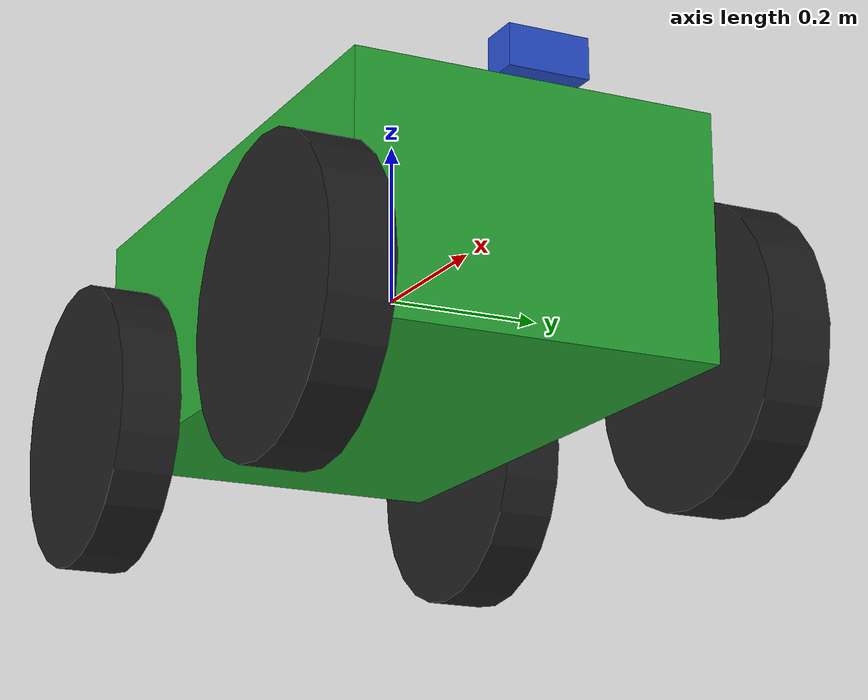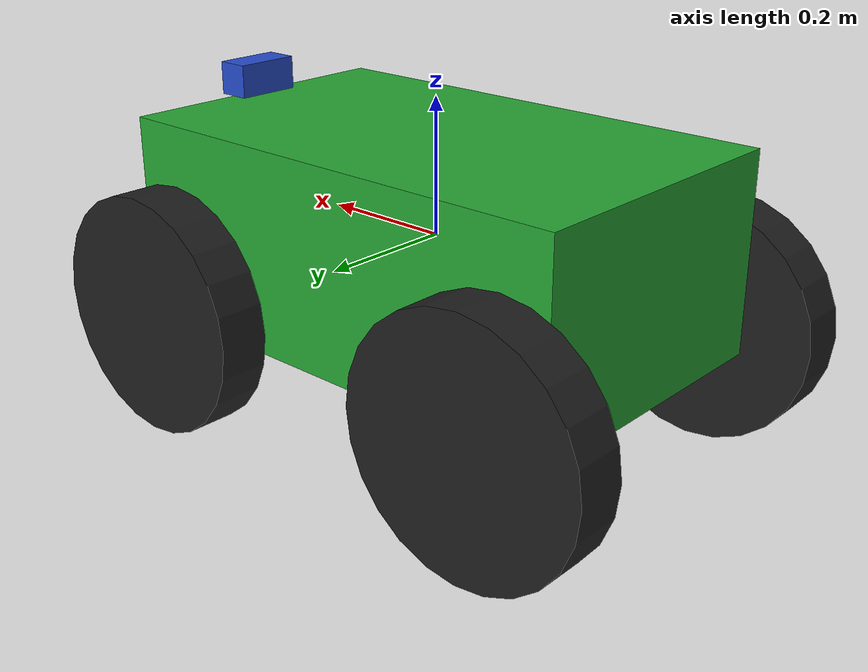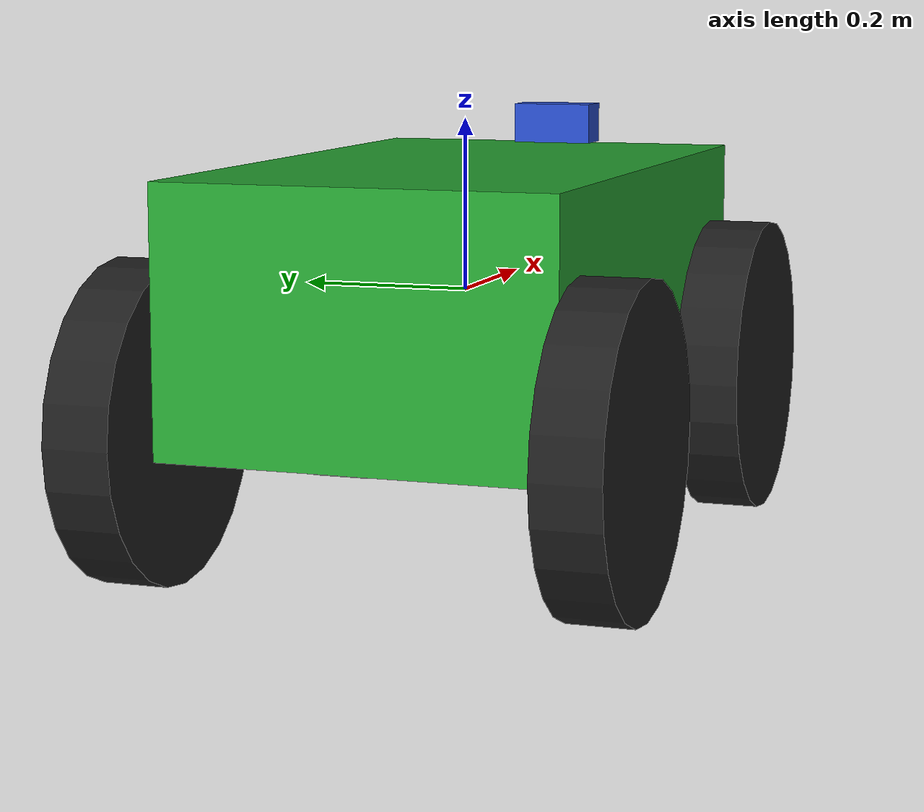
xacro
<?xml version="1.0"?>
<robot name="rover" xmlns:xacro="http://www.ros.org/wiki/xacro">

  <xacro:property name="PI" value="3.1415926535897931"/>

  <xacro:property name="chassisHeight" value="0.3"/>
  <xacro:property name="chassisLength" value="0.75"/>
  <xacro:property name="chassisWidth" value="0.45"/>
  <xacro:property name="chassisMass" value="50"/>

  <!--stick out 0.285 wheel drop = 0.12-->
  <xacro:property name="wheelWidth" value="0.075"/>
  <xacro:property name="wheelRadius" value="0.18"/>
  <xacro:property name="wheelPos" value="0.3"/>
  <xacro:property name="wheelMass" value="5"/>
  <xacro:property name="wheelDrop" value="-0.12"/>

  <xacro:property name="cameraSize" value="0.05"/>
  <xacro:property name="cameraMass" value="0.1"/>
  <xacro:property name="link_name" value="depth"/>
  <xacro:property name="frame_name" value="camera_link"/>
  <xacro:property name="camera_name" value="camera"/>

  <xacro:include filename="$(find rover_description)/urdf/rover.gazebo"/>
  <xacro:include filename="$(find rover_description)/urdf/materials.xacro"/>
  <xacro:include filename="$(find rover_description)/urdf/macros.xacro"/>

  <xacro:macro name="default_inertial" params="mass">
    <inertial>
      <mass value="${mass}"/>
      <inertia ixx="1.0" ixy="0.0" ixz="0.0" iyy="1.0" iyz="0.0" izz="1.0"/>
    </inertial>
  </xacro:macro>

  <link name="base_link">
    <visual>
      <origin xyz="0 0 0" rpy="0 0 0"/>
      <geometry>
        <box size="${chassisLength} ${chassisWidth} ${chassisHeight}"/>
      </geometry>
      <material name="green"/>
    </visual>

    <collision>
      <geometry>
        <box size="${chassisLength} ${chassisWidth} ${chassisHeight}"/>
      </geometry>
    </collision>

    <xacro:default_inertial mass="${chassisMass}"/>
  </link>

  <wheel lr="front_left" tY="1" tX="1"/>
  <wheel lr="front_right" tY="-1" tX="1"/>
  <wheel lr="back_left" tY="1" tX="-1"/>
  <wheel lr="back_right" tY="-1" tX="-1"/>

  <joint name="camera_joint" type="fixed">
    <axis xyz="0 0 0"/>
    <parent link="base_link"/>
    <child link="camera_link"/>
    <origin xyz="${chassisLength/2} 0 ${chassisHeight/2}" rpy="0 0 0"/>
  </joint>

  <link name="camera_link">
    <visual>
      <origin xyz="0 0 0.025" rpy="0 0 0"/>
      <geometry>
        <box size="0.05 0.1 0.05"/>
      </geometry>
      <material name="blue"/>
    </visual>

    <collision>
      <geometry>
        <box size="0.05 0.1 0.05"/>
      </geometry>
    </collision>

    <xacro:default_inertial mass="0.075"/>
  </link>
  >

</robot>

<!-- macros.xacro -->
<robot xmlns:xacro="http://www.ros.org/wiki/xacro">

  <xacro:macro name="wheel" params="lr tY tX">
    <link name="${lr}_wheel">
      <visual>
        <origin xyz="0 0 0" rpy="0 ${PI/2} ${PI/2}"/> <!-- Diffrence-->
        <geometry>
          <cylinder length="${wheelWidth}" radius="${wheelRadius}"/>
        </geometry>
        <material name="black"/>
      </visual>

      <collision>
        <origin xyz="0 0 0" rpy="0 ${PI/2} ${PI/2}"/>
        <geometry>
          <cylinder length="${wheelWidth}" radius="${wheelRadius}"/>
        </geometry>
      </collision>

      <xacro:default_inertial mass="${wheelMass}"/>
    </link>

    <joint name="${lr}_wheel_joint" type="continuous">
      <axis xyz="0 1 0" rpy="0 0 0"/>
      <parent link="base_link"/>
      <child link="${lr}_wheel"/>
      <origin xyz="${(wheelPos*tX)} ${tY*wheelWidth/2+tY*chassisWidth/2} ${wheelDrop}" rpy="0 0 0"/>
    </joint>

    <gazebo reference="${lr}_wheel">
      <mu1 value="200"/>
      <mu2 value="100"/>
      <kp value="10000000.0"/>
      <kd value="1.0"/>
      <material>Gazebo/Black</material>
    </gazebo>

    <transmission name="${lr}_trans">
      <type>transmission_interface/SimpleTransmission</type>
      <actuator name="${lr}_Motor">
        <mechanicalReduction>1</mechanicalReduction>
      </actuator>
      <joint name="${lr}_wheel_joint">
        <hardwareInterface>hardware_interface/VelocityJointInterface</hardwareInterface>
      </joint>
    </transmission>
  </xacro:macro>

  <xacro:macro name="default_inertial" params="mass">
    <inertial>
      <mass value="${mass}"/>
      <inertia ixx="1.0" ixy="0.0" ixz="0.0" iyy="1.0" iyz="0.0" izz="1.0"/>
    </inertial>
  </xacro:macro>

  <xacro:macro name="cylinder_inertia" params="m r h">
    <inertia ixx="${m*(3*r*r+h*h)/12}" ixy="0" ixz="0" iyy="${m*(3*r*r+h*h)/12}" iyz="0" izz="${m*r*r/2}"/>
  </xacro:macro>

  <xacro:macro name="box_inertia" params="m x y z">
    <inertia ixx="${m*(y*y+z*z)/12}" ixy="0" ixz="0" iyy="${m*(x*x+z*z)/12}" iyz="0" izz="${m*(x*x+z*z)/12}"/>
  </xacro:macro>

  <xacro:macro name="sphere_inertia" params="m r">
    <inertia ixx="${2*m*r*r/5}" ixy="0" ixz="0" iyy="${2*m*r*r/5}" iyz="0" izz="${2*m*r*r/5}"/>
  </xacro:macro>

</robot>
